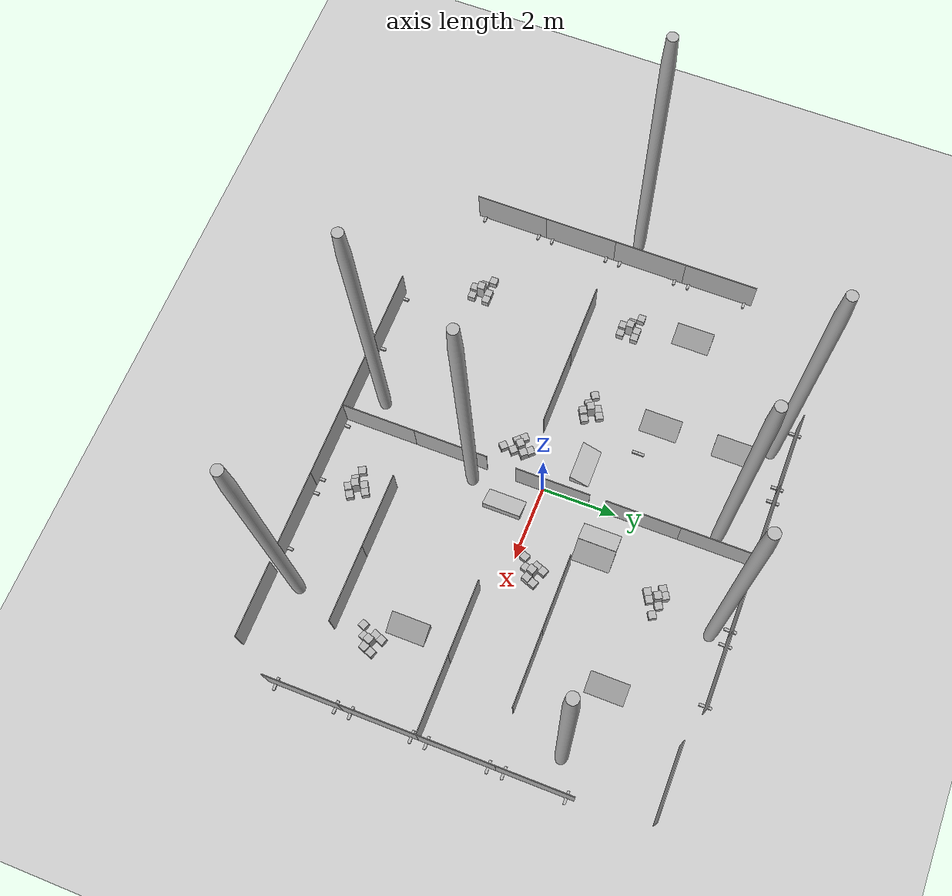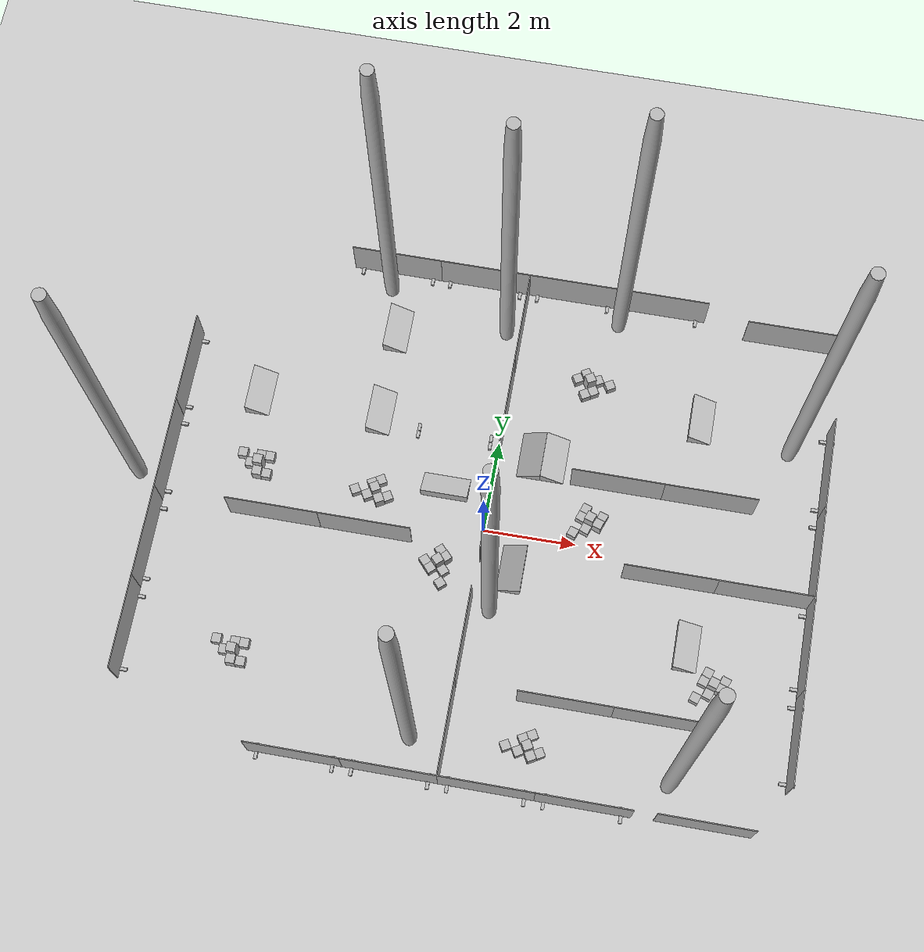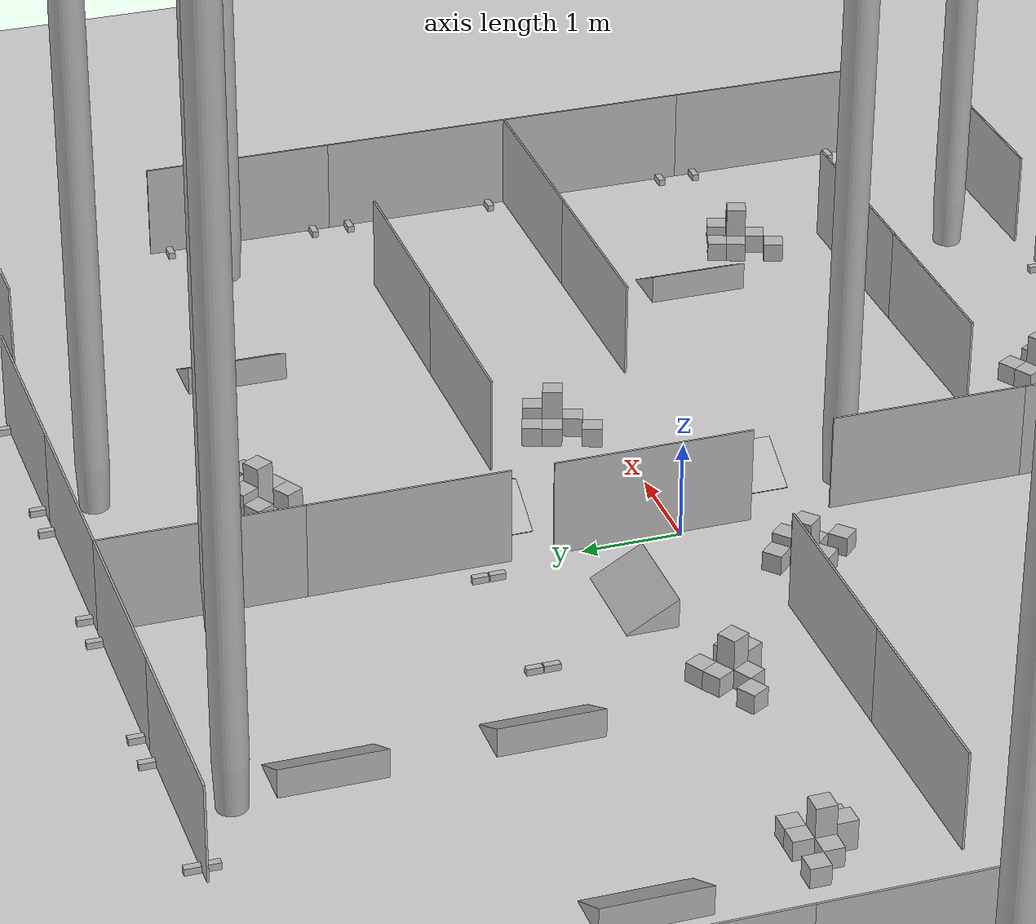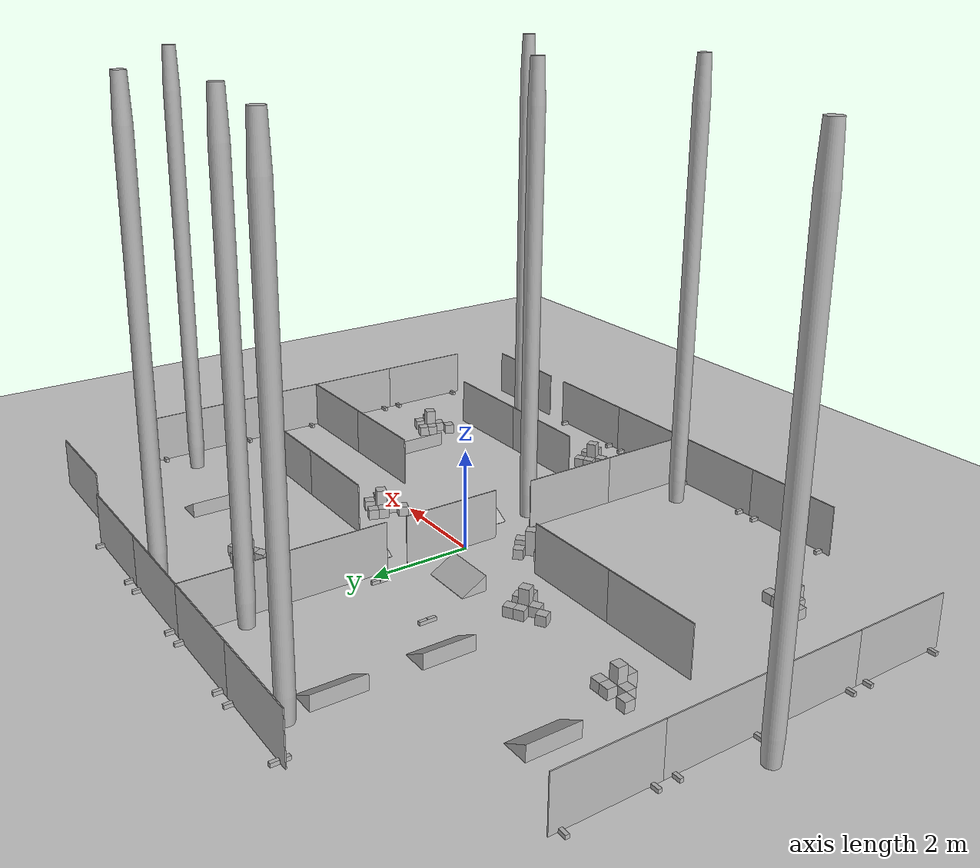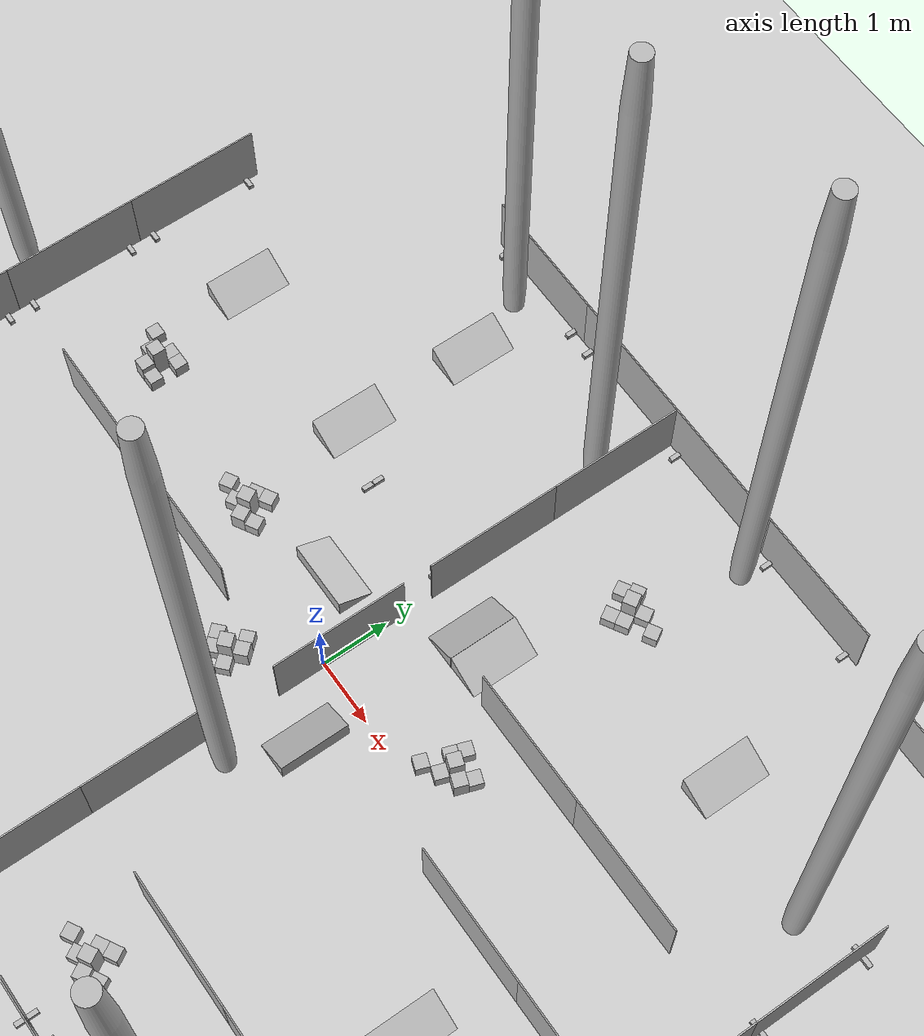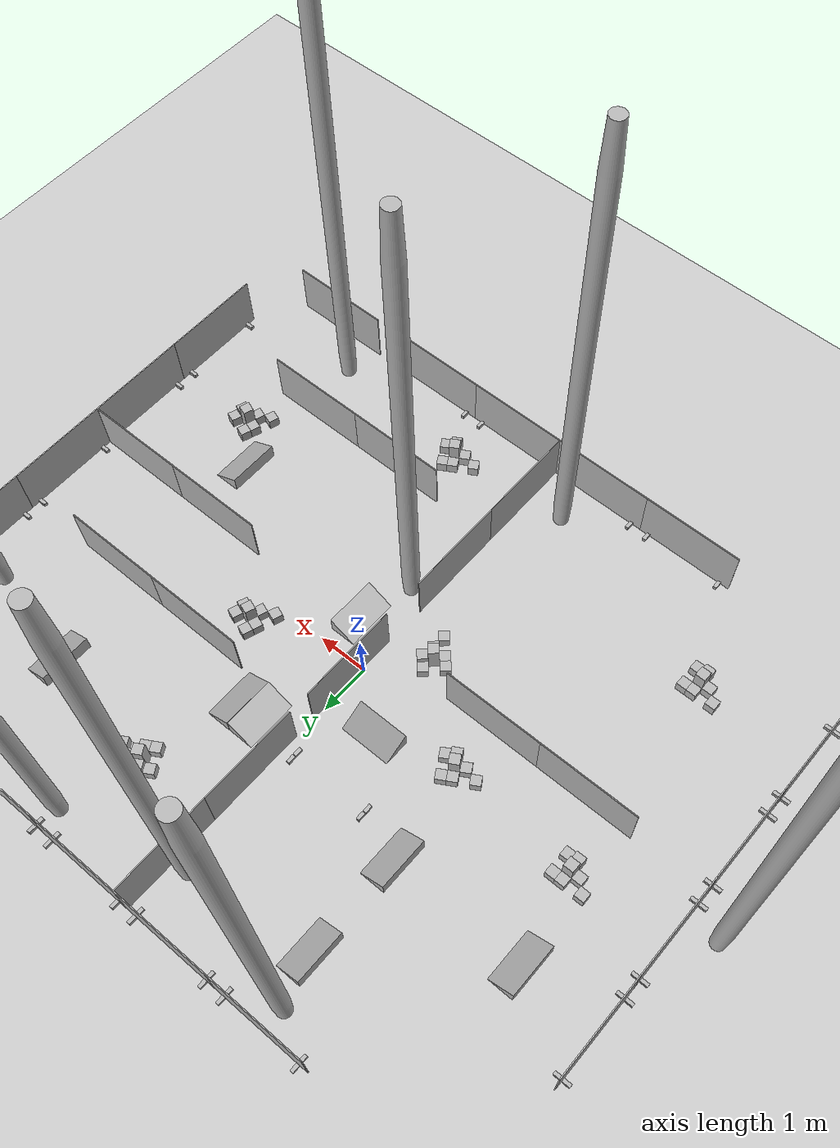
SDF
<sdf version="1.4">
 <world name="arena_HKT_8">
  <include><uri>model://ground_plane</uri></include>
  <include>
   <name>wall_2x1.384</name>
   <pose>-7.0 2.468942403793335 0.5130000114440918  0.0 -0.0 1.570796251296997</pose>
   <uri>model://wall_2x1</uri>
  </include>
  <include>
   <name>wall_2x1.385</name>
   <pose>-2.479029655456543 -0.531057596206665 0.5130000114440918  0.0 0.0 0.0</pose>
   <uri>model://wall_2x1</uri>
  </include>
  <include>
   <name>wall_stand.871</name>
   <pose>-1.8005000352859497 2.0 0.03449999913573265  0.0 -0.0 1.570796251296997</pose>
   <uri>model://wall_stand</uri>
  </include>
  <include>
   <name>wall_stand.872</name>
   <pose>-0.19949999451637268 2.0 0.03449999913573265  0.0 -0.0 1.570796251296997</pose>
   <uri>model://wall_stand</uri>
  </include>
  <include>
   <name>wall_2x1.386</name>
   <pose>-7.0 0.46894240379333496 0.5130000114440918  0.0 -0.0 1.570796251296997</pose>
   <uri>model://wall_2x1</uri>
  </include>
  <include>
   <name>wall_2x1.387</name>
   <pose>-7.0 -3.531057596206665 0.5130000114440918  0.0 -0.0 1.570796251296997</pose>
   <uri>model://wall_2x1</uri>
  </include>
  <include>
   <name>wall_2x1.388</name>
   <pose>-7.0 -1.531057596206665 0.5130000114440918  0.0 -0.0 1.570796251296997</pose>
   <uri>model://wall_2x1</uri>
  </include>
  <include>
   <name>wall_2x1.389</name>
   <pose>-4.479029655456543 -0.531057596206665 0.5130000114440918  0.0 0.0 0.0</pose>
   <uri>model://wall_2x1</uri>
  </include>
  <include>
   <name>wall_stand.873</name>
   <pose>-0.19949999451637268 2.0 0.03449999913573265  0.0 -0.0 1.570796251296997</pose>
   <uri>model://wall_stand</uri>
  </include>
  <include>
   <name>wall_stand.874</name>
   <pose>-7.0 3.269442558288574 0.03449999913573265  0.0 0.0 0.0</pose>
   <uri>model://wall_stand</uri>
  </include>
  <include>
   <name>wall_stand.875</name>
   <pose>-7.0 1.6684424877166748 0.03449999913573265  0.0 0.0 0.0</pose>
   <uri>model://wall_stand</uri>
  </include>
  <include>
   <name>wall_stand.876</name>
   <pose>-7.0 1.2694425582885742 0.03449999913573265  0.0 0.0 0.0</pose>
   <uri>model://wall_stand</uri>
  </include>
  <include>
   <name>wall_stand.877</name>
   <pose>-7.0 -0.3315575122833252 0.03449999913573265  0.0 0.0 0.0</pose>
   <uri>model://wall_stand</uri>
  </include>
  <include>
   <name>wall_stand.878</name>
   <pose>-7.0 -4.331557273864746 0.03449999913573265  0.0 0.0 0.0</pose>
   <uri>model://wall_stand</uri>
  </include>
  <include>
   <name>wall_stand.879</name>
   <pose>-7.0 -2.730557680130005 0.03449999913573265  0.0 0.0 0.0</pose>
   <uri>model://wall_stand</uri>
  </include>
  <include>
   <name>wall_stand.880</name>
   <pose>-7.0 -0.7305574417114258 0.03449999913573265  0.0 0.0 0.0</pose>
   <uri>model://wall_stand</uri>
  </include>
  <include>
   <name>wall_stand.881</name>
   <pose>-7.0 -2.331557512283325 0.03449999913573265  0.0 0.0 0.0</pose>
   <uri>model://wall_stand</uri>
  </include>
  <include>
   <name>cube_20x20.995</name>
   <pose>-5.073810577392578 0.8086726665496826 0.10000000149011612  0.0 -0.0 3.141592502593994</pose>
   <uri>model://cube_20x20</uri>
  </include>
  <include>
   <name>cube_20x20.996</name>
   <pose>-5.273810386657715 0.6086728572845459 0.10000000149011612  0.0 -0.0 3.141592502593994</pose>
   <uri>model://cube_20x20</uri>
  </include>
  <include>
   <name>cube_20x20.997</name>
   <pose>-5.473810195922852 0.8086726665496826 0.10000000149011612  0.0 -0.0 3.141592502593994</pose>
   <uri>model://cube_20x20</uri>
  </include>
  <include>
   <name>cube_20x20.998</name>
   <pose>-4.873810291290283 0.8086726665496826 0.10000000149011612  0.0 -0.0 3.141592502593994</pose>
   <uri>model://cube_20x20</uri>
  </include>
  <include>
   <name>cube_20x20.999</name>
   <pose>-4.873810291290283 0.4086730480194092 0.10000000149011612  0.0 -0.0 3.141592502593994</pose>
   <uri>model://cube_20x20</uri>
  </include>
  <include>
   <name>cube_20x30.168</name>
   <pose>-5.073810577392578 0.4086730480194092 0.15000000596046448  0.0 -0.0 3.141592502593994</pose>
   <uri>model://cube_20x30</uri>
  </include>
  <include>
   <name>cube_20x50.162</name>
   <pose>-5.073810577392578 0.6086728572845459 0.25  0.0 -0.0 3.141592502593994</pose>
   <uri>model://cube_20x50</uri>
  </include>
  <include>
   <name>cube_20x20.1000</name>
   <pose>-5.073810577392578 0.8086726665496826 0.10000000149011612  0.0 -0.0 3.141592502593994</pose>
   <uri>model://cube_20x20</uri>
  </include>
  <include>
   <name>cube_20x20.1001</name>
   <pose>-5.273810386657715 0.6086728572845459 0.10000000149011612  0.0 -0.0 3.141592502593994</pose>
   <uri>model://cube_20x20</uri>
  </include>
  <include>
   <name>cube_20x20.1002</name>
   <pose>-5.473810195922852 0.8086726665496826 0.10000000149011612  0.0 -0.0 3.141592502593994</pose>
   <uri>model://cube_20x20</uri>
  </include>
  <include>
   <name>cube_20x20.1003</name>
   <pose>-4.873810291290283 0.8086726665496826 0.10000000149011612  0.0 -0.0 3.141592502593994</pose>
   <uri>model://cube_20x20</uri>
  </include>
  <include>
   <name>cube_20x20.1004</name>
   <pose>-4.873810291290283 0.4086730480194092 0.10000000149011612  0.0 -0.0 3.141592502593994</pose>
   <uri>model://cube_20x20</uri>
  </include>
  <include>
   <name>cube_20x30.169</name>
   <pose>-5.073810577392578 0.4086730480194092 0.15000000596046448  0.0 -0.0 3.141592502593994</pose>
   <uri>model://cube_20x30</uri>
  </include>
  <include>
   <name>cube_20x50.163</name>
   <pose>-5.073810577392578 0.6086728572845459 0.25  0.0 -0.0 3.141592502593994</pose>
   <uri>model://cube_20x50</uri>
  </include>
  <include>
   <name>ramp.070</name>
   <pose>1.2565653324127197 1.8507144451141357 0.15000000596046448  0.0 0.0 0.0</pose>
   <uri>model://ramp</uri>
  </include>
  <include>
   <name>ramp.071</name>
   <pose>0.7436184883117676 1.8457143306732178 0.15000000596046448  0.0 -0.0 3.141592502593994</pose>
   <uri>model://ramp</uri>
  </include>
  <include>
   <name>ramp.072</name>
   <pose>-0.9832800030708313 0.8252742290496826 0.15000000596046448  0.0 -0.0 7.853981971740723</pose>
   <uri>model://ramp</uri>
  </include>
  <include>
   <name>wall_2x1.390</name>
   <pose>7.071430206298828 -3.531057596206665 0.5130000114440918  0.0 -0.0 4.71238899230957</pose>
   <uri>model://wall_2x1</uri>
  </include>
  <include>
   <name>wall_2x1.391</name>
   <pose>4.071430206298828 -0.5310573577880859 0.5130000114440918  0.0 -0.0 3.141592502593994</pose>
   <uri>model://wall_2x1</uri>
  </include>
  <include>
   <name>wall_stand.882</name>
   <pose>-1.8005000352859497 2.0 0.03449999913573265  0.0 -0.0 1.570796251296997</pose>
   <uri>model://wall_stand</uri>
  </include>
  <include>
   <name>wall_stand.883</name>
   <pose>-0.19949999451637268 2.0 0.03449999913573265  0.0 -0.0 1.570796251296997</pose>
   <uri>model://wall_stand</uri>
  </include>
  <include>
   <name>wall_2x1.392</name>
   <pose>7.071430206298828 -1.531057596206665 0.5130000114440918  0.0 -0.0 4.71238899230957</pose>
   <uri>model://wall_2x1</uri>
  </include>
  <include>
   <name>wall_2x1.393</name>
   <pose>7.071430206298828 2.468942403793335 0.5130000114440918  0.0 -0.0 4.71238899230957</pose>
   <uri>model://wall_2x1</uri>
  </include>
  <include>
   <name>wall_2x1.394</name>
   <pose>7.071430206298828 0.46894240379333496 0.5130000114440918  0.0 -0.0 4.71238899230957</pose>
   <uri>model://wall_2x1</uri>
  </include>
  <include>
   <name>wall_2x1.395</name>
   <pose>6.071430206298828 -0.5310574769973755 0.5130000114440918  0.0 -0.0 3.141592502593994</pose>
   <uri>model://wall_2x1</uri>
  </include>
  <include>
   <name>wall_stand.884</name>
   <pose>-0.19949999451637268 2.0 0.03449999913573265  0.0 -0.0 1.570796251296997</pose>
   <uri>model://wall_stand</uri>
  </include>
  <include>
   <name>wall_stand.885</name>
   <pose>7.071430206298828 -4.331557273864746 0.03450000286102295  0.0 -0.0 3.141592502593994</pose>
   <uri>model://wall_stand</uri>
  </include>
  <include>
   <name>wall_stand.886</name>
   <pose>7.071430206298828 -2.730557680130005 0.03450000286102295  0.0 -0.0 3.141592502593994</pose>
   <uri>model://wall_stand</uri>
  </include>
  <include>
   <name>wall_stand.887</name>
   <pose>7.071430206298828 -2.3315577507019043 0.03450000286102295  0.0 -0.0 3.141592502593994</pose>
   <uri>model://wall_stand</uri>
  </include>
  <include>
   <name>wall_stand.888</name>
   <pose>7.071430206298828 -0.7305576801300049 0.03450000286102295  0.0 -0.0 3.141592502593994</pose>
   <uri>model://wall_stand</uri>
  </include>
  <include>
   <name>wall_stand.889</name>
   <pose>7.071430206298828 3.269442319869995 0.03450000286102295  0.0 -0.0 3.141592502593994</pose>
   <uri>model://wall_stand</uri>
  </include>
  <include>
   <name>wall_stand.890</name>
   <pose>7.071430206298828 1.6684424877166748 0.03450000286102295  0.0 -0.0 3.141592502593994</pose>
   <uri>model://wall_stand</uri>
  </include>
  <include>
   <name>wall_stand.891</name>
   <pose>7.071430206298828 -0.3315577507019043 0.03450000286102295  0.0 -0.0 3.141592502593994</pose>
   <uri>model://wall_stand</uri>
  </include>
  <include>
   <name>wall_stand.892</name>
   <pose>7.071430206298828 1.2694423198699951 0.03450000286102295  0.0 -0.0 3.141592502593994</pose>
   <uri>model://wall_stand</uri>
  </include>
  <include>
   <name>wall_2x1.396</name>
   <pose>-2.989354133605957 -5.530285835266113 0.5130000114440918  0.0 -0.0 3.141592502593994</pose>
   <uri>model://wall_2x1</uri>
  </include>
  <include>
   <name>wall_2x1.397</name>
   <pose>0.010646045207977295 -2.5302858352661133 0.5130000114440918  0.0 -0.0 1.570796251296997</pose>
   <uri>model://wall_2x1</uri>
  </include>
  <include>
   <name>wall_stand.893</name>
   <pose>-1.8005000352859497 2.0 0.03449999913573265  0.0 -0.0 1.570796251296997</pose>
   <uri>model://wall_stand</uri>
  </include>
  <include>
   <name>wall_stand.894</name>
   <pose>-0.19949999451637268 2.0 0.03449999913573265  0.0 -0.0 1.570796251296997</pose>
   <uri>model://wall_stand</uri>
  </include>
  <include>
   <name>wall_2x1.398</name>
   <pose>-0.9893541932106018 -5.530285835266113 0.5130000114440918  0.0 -0.0 3.141592502593994</pose>
   <uri>model://wall_2x1</uri>
  </include>
  <include>
   <name>wall_2x1.399</name>
   <pose>3.010645627975464 -5.530285835266113 0.5130000114440918  0.0 -0.0 3.141592502593994</pose>
   <uri>model://wall_2x1</uri>
  </include>
  <include>
   <name>wall_2x1.400</name>
   <pose>1.010645866394043 -5.530285835266113 0.5130000114440918  0.0 -0.0 3.141592502593994</pose>
   <uri>model://wall_2x1</uri>
  </include>
  <include>
   <name>wall_2x1.401</name>
   <pose>0.010645806789398193 -4.530285835266113 0.5130000114440918  0.0 -0.0 1.570796251296997</pose>
   <uri>model://wall_2x1</uri>
  </include>
  <include>
   <name>wall_stand.895</name>
   <pose>-0.19949999451637268 2.0 0.03449999913573265  0.0 -0.0 1.570796251296997</pose>
   <uri>model://wall_stand</uri>
  </include>
  <include>
   <name>wall_stand.896</name>
   <pose>-3.7898542881011963 -5.530285835266113 0.03450000286102295  0.0 -0.0 1.570796251296997</pose>
   <uri>model://wall_stand</uri>
  </include>
  <include>
   <name>wall_stand.897</name>
   <pose>-2.188854217529297 -5.530285835266113 0.03450000286102295  0.0 -0.0 1.570796251296997</pose>
   <uri>model://wall_stand</uri>
  </include>
  <include>
   <name>wall_stand.898</name>
   <pose>-1.7898542881011963 -5.530285835266113 0.03450000286102295  0.0 -0.0 1.570796251296997</pose>
   <uri>model://wall_stand</uri>
  </include>
  <include>
   <name>wall_stand.899</name>
   <pose>-0.18885427713394165 -5.530285835266113 0.03450000286102295  0.0 -0.0 1.570796251296997</pose>
   <uri>model://wall_stand</uri>
  </include>
  <include>
   <name>wall_stand.900</name>
   <pose>3.811145544052124 -5.530285835266113 0.03450000286102295  0.0 -0.0 1.570796251296997</pose>
   <uri>model://wall_stand</uri>
  </include>
  <include>
   <name>wall_stand.901</name>
   <pose>2.210145950317383 -5.530285835266113 0.03450000286102295  0.0 -0.0 1.570796251296997</pose>
   <uri>model://wall_stand</uri>
  </include>
  <include>
   <name>wall_stand.902</name>
   <pose>0.21014565229415894 -5.530285835266113 0.03450000286102295  0.0 -0.0 1.570796251296997</pose>
   <uri>model://wall_stand</uri>
  </include>
  <include>
   <name>wall_stand.903</name>
   <pose>1.8111457824707031 -5.530285835266113 0.03450000286102295  0.0 -0.0 1.570796251296997</pose>
   <uri>model://wall_stand</uri>
  </include>
  <include>
   <name>cube_20x20.1005</name>
   <pose>-4.71690034866333 -3.3630831241607666 0.10000000149011612  0.0 -0.0 3.141592502593994</pose>
   <uri>model://cube_20x20</uri>
  </include>
  <include>
   <name>cube_20x20.1006</name>
   <pose>-4.916900157928467 -3.5630829334259033 0.10000000149011612  0.0 -0.0 3.141592502593994</pose>
   <uri>model://cube_20x20</uri>
  </include>
  <include>
   <name>cube_20x20.1007</name>
   <pose>-5.1168999671936035 -3.3630831241607666 0.10000000149011612  0.0 -0.0 3.141592502593994</pose>
   <uri>model://cube_20x20</uri>
  </include>
  <include>
   <name>cube_20x20.1008</name>
   <pose>-4.516900062561035 -3.3630831241607666 0.10000000149011612  0.0 -0.0 3.141592502593994</pose>
   <uri>model://cube_20x20</uri>
  </include>
  <include>
   <name>cube_20x20.1009</name>
   <pose>-4.516900062561035 -3.76308274269104 0.10000000149011612  0.0 -0.0 3.141592502593994</pose>
   <uri>model://cube_20x20</uri>
  </include>
  <include>
   <name>cube_20x20.1010</name>
   <pose>-4.71690034866333 -3.3630831241607666 0.10000000149011612  0.0 -0.0 3.141592502593994</pose>
   <uri>model://cube_20x20</uri>
  </include>
  <include>
   <name>cube_20x20.1011</name>
   <pose>-4.916900157928467 -3.5630829334259033 0.10000000149011612  0.0 -0.0 3.141592502593994</pose>
   <uri>model://cube_20x20</uri>
  </include>
  <include>
   <name>cube_20x20.1012</name>
   <pose>-5.1168999671936035 -3.3630831241607666 0.10000000149011612  0.0 -0.0 3.141592502593994</pose>
   <uri>model://cube_20x20</uri>
  </include>
  <include>
   <name>cube_20x20.1013</name>
   <pose>-4.516900062561035 -3.3630831241607666 0.10000000149011612  0.0 -0.0 3.141592502593994</pose>
   <uri>model://cube_20x20</uri>
  </include>
  <include>
   <name>cube_20x20.1014</name>
   <pose>-4.516900062561035 -3.76308274269104 0.10000000149011612  0.0 -0.0 3.141592502593994</pose>
   <uri>model://cube_20x20</uri>
  </include>
  <include>
   <name>cube_20x30.170</name>
   <pose>-4.71690034866333 -3.76308274269104 0.15000000596046448  0.0 -0.0 3.141592502593994</pose>
   <uri>model://cube_20x30</uri>
  </include>
  <include>
   <name>cube_20x30.171</name>
   <pose>-4.71690034866333 -3.76308274269104 0.15000000596046448  0.0 -0.0 3.141592502593994</pose>
   <uri>model://cube_20x30</uri>
  </include>
  <include>
   <name>cube_20x50.164</name>
   <pose>-4.71690034866333 -3.5630829334259033 0.25  0.0 -0.0 3.141592502593994</pose>
   <uri>model://cube_20x50</uri>
  </include>
  <include>
   <name>cube_20x50.165</name>
   <pose>-4.71690034866333 -3.5630829334259033 0.25  0.0 -0.0 3.141592502593994</pose>
   <uri>model://cube_20x50</uri>
  </include>
  <include>
   <name>cube_20x20.1015</name>
   <pose>1.5919134616851807 -4.343883514404297 0.10000000149011612  0.0 -0.0 3.6651763916015625</pose>
   <uri>model://cube_20x20</uri>
  </include>
  <include>
   <name>cube_20x20.1016</name>
   <pose>1.5187044143676758 -4.617087364196777 0.10000000149011612  0.0 -0.0 3.6651763916015625</pose>
   <uri>model://cube_20x20</uri>
  </include>
  <include>
   <name>cube_20x20.1017</name>
   <pose>1.2455005645751953 -4.543877601623535 0.10000000149011612  0.0 -0.0 3.6651763916015625</pose>
   <uri>model://cube_20x20</uri>
  </include>
  <include>
   <name>cube_20x20.1018</name>
   <pose>1.7651203870773315 -4.2438859939575195 0.10000000149011612  0.0 -0.0 3.6651763916015625</pose>
   <uri>model://cube_20x20</uri>
  </include>
  <include>
   <name>cube_20x20.1019</name>
   <pose>1.9651148319244385 -4.590298652648926 0.10000000149011612  0.0 -0.0 3.6651763916015625</pose>
   <uri>model://cube_20x20</uri>
  </include>
  <include>
   <name>cube_20x20.1020</name>
   <pose>1.5919134616851807 -4.343883514404297 0.10000000149011612  0.0 -0.0 3.6651763916015625</pose>
   <uri>model://cube_20x20</uri>
  </include>
  <include>
   <name>cube_20x20.1021</name>
   <pose>1.5187044143676758 -4.617087364196777 0.10000000149011612  0.0 -0.0 3.6651763916015625</pose>
   <uri>model://cube_20x20</uri>
  </include>
  <include>
   <name>cube_20x20.1022</name>
   <pose>1.2455005645751953 -4.543877601623535 0.10000000149011612  0.0 -0.0 3.6651763916015625</pose>
   <uri>model://cube_20x20</uri>
  </include>
  <include>
   <name>cube_20x20.1023</name>
   <pose>1.7651203870773315 -4.2438859939575195 0.10000000149011612  0.0 -0.0 3.6651763916015625</pose>
   <uri>model://cube_20x20</uri>
  </include>
  <include>
   <name>cube_20x20.1024</name>
   <pose>1.9651148319244385 -4.590298652648926 0.10000000149011612  0.0 -0.0 3.6651763916015625</pose>
   <uri>model://cube_20x20</uri>
  </include>
  <include>
   <name>cube_20x30.172</name>
   <pose>1.7919080257415771 -4.690296173095703 0.15000000596046448  0.0 -0.0 3.6651763916015625</pose>
   <uri>model://cube_20x30</uri>
  </include>
  <include>
   <name>cube_20x30.173</name>
   <pose>1.7919080257415771 -4.690296173095703 0.15000000596046448  0.0 -0.0 3.6651763916015625</pose>
   <uri>model://cube_20x30</uri>
  </include>
  <include>
   <name>cube_20x50.166</name>
   <pose>1.691910743713379 -4.51708984375 0.25  0.0 -0.0 3.6651763916015625</pose>
   <uri>model://cube_20x50</uri>
  </include>
  <include>
   <name>cube_20x50.167</name>
   <pose>1.691910743713379 -4.51708984375 0.25  0.0 -0.0 3.6651763916015625</pose>
   <uri>model://cube_20x50</uri>
  </include>
  <include>
   <name>cube_20x20.1025</name>
   <pose>2.0343916416168213 0.613365888595581 0.10000000149011612  0.0 0.0 4.376082897186279</pose>
   <uri>model://cube_20x20</uri>
  </include>
  <include>
   <name>cube_20x20.1026</name>
   <pose>2.1571874618530273 0.358569860458374 0.10000000149011612  0.0 0.0 4.376082897186279</pose>
   <uri>model://cube_20x20</uri>
  </include>
  <include>
   <name>cube_20x20.1027</name>
   <pose>1.902390956878662 0.23577475547790527 0.10000000149011612  0.0 0.0 4.376082897186279</pose>
   <uri>model://cube_20x20</uri>
  </include>
  <include>
   <name>cube_20x20.1028</name>
   <pose>2.1003925800323486 0.8021619319915771 0.10000000149011612  0.0 0.0 4.376082897186279</pose>
   <uri>model://cube_20x20</uri>
  </include>
  <include>
   <name>cube_20x20.1029</name>
   <pose>2.4779841899871826 0.6701610088348389 0.10000000149011612  0.0 0.0 4.376082897186279</pose>
   <uri>model://cube_20x20</uri>
  </include>
  <include>
   <name>cube_20x20.1030</name>
   <pose>2.0343916416168213 0.613365888595581 0.10000000149011612  0.0 0.0 4.376082897186279</pose>
   <uri>model://cube_20x20</uri>
  </include>
  <include>
   <name>cube_20x20.1031</name>
   <pose>2.1571874618530273 0.358569860458374 0.10000000149011612  0.0 0.0 4.376082897186279</pose>
   <uri>model://cube_20x20</uri>
  </include>
  <include>
   <name>cube_20x20.1032</name>
   <pose>1.902390956878662 0.23577475547790527 0.10000000149011612  0.0 0.0 4.376082897186279</pose>
   <uri>model://cube_20x20</uri>
  </include>
  <include>
   <name>cube_20x20.1033</name>
   <pose>2.1003925800323486 0.8021619319915771 0.10000000149011612  0.0 0.0 4.376082897186279</pose>
   <uri>model://cube_20x20</uri>
  </include>
  <include>
   <name>cube_20x20.1034</name>
   <pose>2.4779841899871826 0.6701610088348389 0.10000000149011612  0.0 0.0 4.376082897186279</pose>
   <uri>model://cube_20x20</uri>
  </include>
  <include>
   <name>cube_20x30.174</name>
   <pose>2.4119834899902344 0.4813649654388428 0.15000000596046448  0.0 0.0 4.376082897186279</pose>
   <uri>model://cube_20x30</uri>
  </include>
  <include>
   <name>cube_20x30.175</name>
   <pose>2.4119834899902344 0.4813649654388428 0.15000000596046448  0.0 0.0 4.376082897186279</pose>
   <uri>model://cube_20x30</uri>
  </include>
  <include>
   <name>cube_20x50.168</name>
   <pose>2.2231879234313965 0.5473649501800537 0.25  0.0 0.0 4.376082897186279</pose>
   <uri>model://cube_20x50</uri>
  </include>
  <include>
   <name>cube_20x50.169</name>
   <pose>2.2231879234313965 0.5473649501800537 0.25  0.0 0.0 4.376082897186279</pose>
   <uri>model://cube_20x50</uri>
  </include>
  <include>
   <name>ramp.073</name>
   <pose>4.665114402770996 -1.8227006196975708 0.15000000596046448  0.0 0.0 0.0</pose>
   <uri>model://ramp</uri>
  </include>
  <include>
   <name>ramp.074</name>
   <pose>0.7436184883117676 -0.7737877368927002 0.15000000596046448  0.0 -0.0 3.141592502593994</pose>
   <uri>model://ramp</uri>
  </include>
  <include>
   <name>cube_20x20.1035</name>
   <pose>-0.978894829750061 -1.071094274520874 0.10000000149011612  0.0 0.0 5.4528021812438965</pose>
   <uri>model://cube_20x20</uri>
  </include>
  <include>
   <name>cube_20x20.1036</name>
   <pose>-0.6963385343551636 -1.0838134288787842 0.10000000149011612  0.0 0.0 5.4528021812438965</pose>
   <uri>model://cube_20x20</uri>
  </include>
  <include>
   <name>cube_20x20.1037</name>
   <pose>-0.709058403968811 -1.3663697242736816 0.10000000149011612  0.0 0.0 5.4528021812438965</pose>
   <uri>model://cube_20x20</uri>
  </include>
  <include>
   <name>cube_20x20.1038</name>
   <pose>-1.1138131618499756 -0.9234559535980225 0.10000000149011612  0.0 0.0 5.4528021812438965</pose>
   <uri>model://cube_20x20</uri>
  </include>
  <include>
   <name>cube_20x20.1039</name>
   <pose>-0.8185372948646545 -0.6536192893981934 0.10000000149011612  0.0 0.0 5.4528021812438965</pose>
   <uri>model://cube_20x20</uri>
  </include>
  <include>
   <name>cube_20x20.1040</name>
   <pose>-0.978894829750061 -1.071094274520874 0.10000000149011612  0.0 0.0 5.4528021812438965</pose>
   <uri>model://cube_20x20</uri>
  </include>
  <include>
   <name>cube_20x20.1041</name>
   <pose>-0.6963385343551636 -1.0838134288787842 0.10000000149011612  0.0 0.0 5.4528021812438965</pose>
   <uri>model://cube_20x20</uri>
  </include>
  <include>
   <name>cube_20x20.1042</name>
   <pose>-0.709058403968811 -1.3663697242736816 0.10000000149011612  0.0 0.0 5.4528021812438965</pose>
   <uri>model://cube_20x20</uri>
  </include>
  <include>
   <name>cube_20x20.1043</name>
   <pose>-1.1138131618499756 -0.9234559535980225 0.10000000149011612  0.0 0.0 5.4528021812438965</pose>
   <uri>model://cube_20x20</uri>
  </include>
  <include>
   <name>cube_20x20.1044</name>
   <pose>-0.8185372948646545 -0.6536192893981934 0.10000000149011612  0.0 0.0 5.4528021812438965</pose>
   <uri>model://cube_20x20</uri>
  </include>
  <include>
   <name>cube_20x30.176</name>
   <pose>-0.6836188435554504 -0.8012573719024658 0.15000000596046448  0.0 0.0 5.4528021812438965</pose>
   <uri>model://cube_20x30</uri>
  </include>
  <include>
   <name>cube_20x30.177</name>
   <pose>-0.6836188435554504 -0.8012573719024658 0.15000000596046448  0.0 0.0 5.4528021812438965</pose>
   <uri>model://cube_20x30</uri>
  </include>
  <include>
   <name>cube_20x50.170</name>
   <pose>-0.8312562108039856 -0.9361758232116699 0.25  0.0 0.0 5.4528021812438965</pose>
   <uri>model://cube_20x50</uri>
  </include>
  <include>
   <name>cube_20x50.171</name>
   <pose>-0.8312562108039856 -0.9361758232116699 0.25  0.0 0.0 5.4528021812438965</pose>
   <uri>model://cube_20x50</uri>
  </include>
  <include>
   <name>cube_20x20.1045</name>
   <pose>1.8325855731964111 3.536480188369751 0.10000000149011612  0.0 0.0 6.806769371032715</pose>
   <uri>model://cube_20x20</uri>
  </include>
  <include>
   <name>cube_20x20.1046</name>
   <pose>1.905794620513916 3.8096840381622314 0.10000000149011612  0.0 0.0 6.806769371032715</pose>
   <uri>model://cube_20x20</uri>
  </include>
  <include>
   <name>cube_20x20.1047</name>
   <pose>2.1789984703063965 3.7364747524261475 0.10000000149011612  0.0 0.0 6.806769371032715</pose>
   <uri>model://cube_20x20</uri>
  </include>
  <include>
   <name>cube_20x20.1048</name>
   <pose>1.6593786478042603 3.4364826679229736 0.10000000149011612  0.0 0.0 6.806769371032715</pose>
   <uri>model://cube_20x20</uri>
  </include>
  <include>
   <name>cube_20x20.1049</name>
   <pose>1.4593842029571533 3.782895803451538 0.10000000149011612  0.0 0.0 6.806769371032715</pose>
   <uri>model://cube_20x20</uri>
  </include>
  <include>
   <name>cube_20x20.1050</name>
   <pose>1.8325855731964111 3.536480188369751 0.10000000149011612  0.0 0.0 6.806769371032715</pose>
   <uri>model://cube_20x20</uri>
  </include>
  <include>
   <name>cube_20x20.1051</name>
   <pose>1.905794620513916 3.8096840381622314 0.10000000149011612  0.0 0.0 6.806769371032715</pose>
   <uri>model://cube_20x20</uri>
  </include>
  <include>
   <name>cube_20x20.1052</name>
   <pose>2.1789984703063965 3.7364747524261475 0.10000000149011612  0.0 0.0 6.806769371032715</pose>
   <uri>model://cube_20x20</uri>
  </include>
  <include>
   <name>cube_20x20.1053</name>
   <pose>1.6593786478042603 3.4364826679229736 0.10000000149011612  0.0 0.0 6.806769371032715</pose>
   <uri>model://cube_20x20</uri>
  </include>
  <include>
   <name>cube_20x20.1054</name>
   <pose>1.4593842029571533 3.782895803451538 0.10000000149011612  0.0 0.0 6.806769371032715</pose>
   <uri>model://cube_20x20</uri>
  </include>
  <include>
   <name>cube_20x30.178</name>
   <pose>1.6325910091400146 3.8828933238983154 0.15000000596046448  0.0 0.0 6.806769371032715</pose>
   <uri>model://cube_20x30</uri>
  </include>
  <include>
   <name>cube_20x30.179</name>
   <pose>1.6325910091400146 3.8828933238983154 0.15000000596046448  0.0 0.0 6.806769371032715</pose>
   <uri>model://cube_20x30</uri>
  </include>
  <include>
   <name>cube_20x50.172</name>
   <pose>1.732588291168213 3.7096869945526123 0.25  0.0 0.0 6.806769371032715</pose>
   <uri>model://cube_20x50</uri>
  </include>
  <include>
   <name>cube_20x50.173</name>
   <pose>1.732588291168213 3.7096869945526123 0.25  0.0 0.0 6.806769371032715</pose>
   <uri>model://cube_20x50</uri>
  </include>
  <include>
   <name>wall_2x1.402</name>
   <pose>3.0413644313812256 5.695001602172852 0.5130000114440918  0.0 -0.0 6.283185005187988</pose>
   <uri>model://wall_2x1</uri>
  </include>
  <include>
   <name>wall_2x1.403</name>
   <pose>0.04136395454406738 2.695002794265747 0.5130000114440918  0.0 -0.0 4.71238899230957</pose>
   <uri>model://wall_2x1</uri>
  </include>
  <include>
   <name>wall_stand.904</name>
   <pose>-1.8005000352859497 2.0 0.03449999913573265  0.0 -0.0 1.570796251296997</pose>
   <uri>model://wall_stand</uri>
  </include>
  <include>
   <name>wall_stand.905</name>
   <pose>-0.19949999451637268 2.0 0.03449999913573265  0.0 -0.0 1.570796251296997</pose>
   <uri>model://wall_stand</uri>
  </include>
  <include>
   <name>wall_2x1.404</name>
   <pose>1.0413646697998047 5.695002555847168 0.5130000114440918  0.0 -0.0 6.283185005187988</pose>
   <uri>model://wall_2x1</uri>
  </include>
  <include>
   <name>wall_2x1.405</name>
   <pose>-2.9586355686187744 5.695002555847168 0.5130000114440918  0.0 -0.0 6.283185005187988</pose>
   <uri>model://wall_2x1</uri>
  </include>
  <include>
   <name>wall_2x1.406</name>
   <pose>-0.9586355686187744 5.695002555847168 0.5130000114440918  0.0 -0.0 6.283185005187988</pose>
   <uri>model://wall_2x1</uri>
  </include>
  <include>
   <name>wall_2x1.407</name>
   <pose>0.041364431381225586 4.695002555847168 0.5130000114440918  0.0 -0.0 4.71238899230957</pose>
   <uri>model://wall_2x1</uri>
  </include>
  <include>
   <name>wall_stand.906</name>
   <pose>-0.19949999451637268 2.0 0.03449999913573265  0.0 -0.0 1.570796251296997</pose>
   <uri>model://wall_stand</uri>
  </include>
  <include>
   <name>wall_stand.907</name>
   <pose>3.841865062713623 5.695001602172852 0.03450000286102295  0.0 -0.0 4.71238899230957</pose>
   <uri>model://wall_stand</uri>
  </include>
  <include>
   <name>wall_stand.908</name>
   <pose>2.2408647537231445 5.695002555847168 0.03450000286102295  0.0 -0.0 4.71238899230957</pose>
   <uri>model://wall_stand</uri>
  </include>
  <include>
   <name>wall_stand.909</name>
   <pose>1.8418647050857544 5.695002555847168 0.03450000286102295  0.0 -0.0 4.71238899230957</pose>
   <uri>model://wall_stand</uri>
  </include>
  <include>
   <name>wall_stand.910</name>
   <pose>0.24086451530456543 5.695002555847168 0.03450000286102295  0.0 -0.0 4.71238899230957</pose>
   <uri>model://wall_stand</uri>
  </include>
  <include>
   <name>wall_stand.911</name>
   <pose>-3.7591354846954346 5.695002555847168 0.03450000286102295  0.0 -0.0 4.71238899230957</pose>
   <uri>model://wall_stand</uri>
  </include>
  <include>
   <name>wall_stand.912</name>
   <pose>-2.1581356525421143 5.695002555847168 0.03450000286102295  0.0 -0.0 4.71238899230957</pose>
   <uri>model://wall_stand</uri>
  </include>
  <include>
   <name>wall_stand.913</name>
   <pose>-0.15813517570495605 5.695002555847168 0.03450000286102295  0.0 -0.0 4.71238899230957</pose>
   <uri>model://wall_stand</uri>
  </include>
  <include>
   <name>wall_stand.914</name>
   <pose>-1.7591354846954346 5.695002555847168 0.03450000286102295  0.0 -0.0 4.71238899230957</pose>
   <uri>model://wall_stand</uri>
  </include>
  <include>
   <name>wall_2x1.408</name>
   <pose>0.04136395454406738 0.2739219665527344 0.5130000114440918  0.0 -0.0 4.71238899230957</pose>
   <uri>model://wall_2x1</uri>
  </include>
  <include>
   <name>wall_stand.915</name>
   <pose>-1.8005000352859497 2.0 0.03449999913573265  0.0 -0.0 1.570796251296997</pose>
   <uri>model://wall_stand</uri>
  </include>
  <include>
   <name>wall_stand.916</name>
   <pose>-0.19949999451637268 2.0 0.03449999913573265  0.0 -0.0 1.570796251296997</pose>
   <uri>model://wall_stand</uri>
  </include>
  <include>
   <name>wall_2x1.409</name>
   <pose>5.476836204528809 -5.509757041931152 0.5130000114440918  0.0 -0.0 6.2831854820251465</pose>
   <uri>model://wall_2x1</uri>
  </include>
  <include>
   <name>wall_stand.917</name>
   <pose>-1.8005000352859497 2.0 0.03449999913573265  0.0 -0.0 1.570796251296997</pose>
   <uri>model://wall_stand</uri>
  </include>
  <include>
   <name>wall_stand.918</name>
   <pose>-0.19949999451637268 2.0 0.03449999913573265  0.0 -0.0 1.570796251296997</pose>
   <uri>model://wall_stand</uri>
  </include>
  <include>
   <name>wall_2x1.410</name>
   <pose>4.3128767013549805 -3.5467369556427 0.5130000114440918  0.0 -0.0 6.2831854820251465</pose>
   <uri>model://wall_2x1</uri>
  </include>
  <include>
   <name>wall_stand.919</name>
   <pose>-1.8005000352859497 2.0 0.03449999913573265  0.0 -0.0 1.570796251296997</pose>
   <uri>model://wall_stand</uri>
  </include>
  <include>
   <name>wall_stand.920</name>
   <pose>-0.19949999451637268 2.0 0.03449999913573265  0.0 -0.0 1.570796251296997</pose>
   <uri>model://wall_stand</uri>
  </include>
  <include>
   <name>wall_2x1.411</name>
   <pose>2.3128767013549805 -3.5467369556427 0.5130000114440918  0.0 -0.0 6.2831854820251465</pose>
   <uri>model://wall_2x1</uri>
  </include>
  <include>
   <name>wall_stand.921</name>
   <pose>-1.8005000352859497 2.0 0.03449999913573265  0.0 -0.0 1.570796251296997</pose>
   <uri>model://wall_stand</uri>
  </include>
  <include>
   <name>wall_stand.922</name>
   <pose>-0.19949999451637268 2.0 0.03449999913573265  0.0 -0.0 1.570796251296997</pose>
   <uri>model://wall_stand</uri>
  </include>
  <include>
   <name>ramp.075</name>
   <pose>-5.403332710266113 2.3036534786224365 0.15000000596046448  0.0 -0.0 6.283185005187988</pose>
   <uri>model://ramp</uri>
  </include>
  <include>
   <name>wall_2x1.412</name>
   <pose>5.946268081665039 5.418047904968262 0.5130000114440918  0.0 -0.0 9.42477798461914</pose>
   <uri>model://wall_2x1</uri>
  </include>
  <include>
   <name>wall_stand.923</name>
   <pose>-1.8005000352859497 2.0 0.03449999913573265  0.0 -0.0 1.570796251296997</pose>
   <uri>model://wall_stand</uri>
  </include>
  <include>
   <name>wall_stand.924</name>
   <pose>-0.19949999451637268 2.0 0.03449999913573265  0.0 -0.0 1.570796251296997</pose>
   <uri>model://wall_stand</uri>
  </include>
  <include>
   <name>wall_2x1.413</name>
   <pose>2.6684865951538086 1.3634209632873535 0.5130000114440918  0.0 -0.0 9.42477798461914</pose>
   <uri>model://wall_2x1</uri>
  </include>
  <include>
   <name>wall_stand.925</name>
   <pose>-1.8005000352859497 2.0 0.03449999913573265  0.0 -0.0 1.570796251296997</pose>
   <uri>model://wall_stand</uri>
  </include>
  <include>
   <name>wall_stand.926</name>
   <pose>-0.19949999451637268 2.0 0.03449999913573265  0.0 -0.0 1.570796251296997</pose>
   <uri>model://wall_stand</uri>
  </include>
  <include>
   <name>wall_2x1.414</name>
   <pose>4.668486595153809 1.3634209632873535 0.5130000114440918  0.0 -0.0 9.42477798461914</pose>
   <uri>model://wall_2x1</uri>
  </include>
  <include>
   <name>wall_stand.927</name>
   <pose>-1.8005000352859497 2.0 0.03449999913573265  0.0 -0.0 1.570796251296997</pose>
   <uri>model://wall_stand</uri>
  </include>
  <include>
   <name>wall_stand.928</name>
   <pose>-0.19949999451637268 2.0 0.03449999913573265  0.0 -0.0 1.570796251296997</pose>
   <uri>model://wall_stand</uri>
  </include>
  <include>
   <name>ramp.076</name>
   <pose>-2.6988332271575928 2.3036534786224365 0.15000000596046448  0.0 -0.0 6.283185005187988</pose>
   <uri>model://ramp</uri>
  </include>
  <include>
   <name>ramp.077</name>
   <pose>-2.6988332271575928 4.303653717041016 0.15000000596046448  0.0 -0.0 6.283185005187988</pose>
   <uri>model://ramp</uri>
  </include>
  <include>
   <name>cube_20x20.1055</name>
   <pose>-2.552931070327759 0.590984582901001 0.10000000149011612  0.0 -0.0 3.6651763916015625</pose>
   <uri>model://cube_20x20</uri>
  </include>
  <include>
   <name>cube_20x20.1056</name>
   <pose>-2.6261401176452637 0.3177807331085205 0.10000000149011612  0.0 -0.0 3.6651763916015625</pose>
   <uri>model://cube_20x20</uri>
  </include>
  <include>
   <name>cube_20x20.1057</name>
   <pose>-2.8993442058563232 0.3909900188446045 0.10000000149011612  0.0 -0.0 3.6651763916015625</pose>
   <uri>model://cube_20x20</uri>
  </include>
  <include>
   <name>cube_20x20.1058</name>
   <pose>-2.3797242641448975 0.6909821033477783 0.10000000149011612  0.0 -0.0 3.6651763916015625</pose>
   <uri>model://cube_20x20</uri>
  </include>
  <include>
   <name>cube_20x20.1059</name>
   <pose>-2.179729700088501 0.34456896781921387 0.10000000149011612  0.0 -0.0 3.6651763916015625</pose>
   <uri>model://cube_20x20</uri>
  </include>
  <include>
   <name>cube_20x20.1060</name>
   <pose>-2.552931070327759 0.590984582901001 0.10000000149011612  0.0 -0.0 3.6651763916015625</pose>
   <uri>model://cube_20x20</uri>
  </include>
  <include>
   <name>cube_20x20.1061</name>
   <pose>-2.6261401176452637 0.3177807331085205 0.10000000149011612  0.0 -0.0 3.6651763916015625</pose>
   <uri>model://cube_20x20</uri>
  </include>
  <include>
   <name>cube_20x20.1062</name>
   <pose>-2.8993442058563232 0.3909900188446045 0.10000000149011612  0.0 -0.0 3.6651763916015625</pose>
   <uri>model://cube_20x20</uri>
  </include>
  <include>
   <name>cube_20x20.1063</name>
   <pose>-2.3797242641448975 0.6909821033477783 0.10000000149011612  0.0 -0.0 3.6651763916015625</pose>
   <uri>model://cube_20x20</uri>
  </include>
  <include>
   <name>cube_20x20.1064</name>
   <pose>-2.179729700088501 0.34456896781921387 0.10000000149011612  0.0 -0.0 3.6651763916015625</pose>
   <uri>model://cube_20x20</uri>
  </include>
  <include>
   <name>cube_20x20.1065</name>
   <pose>5.100072860717773 -2.5086545944213867 0.10000000149011612  0.0 0.0 4.376082897186279</pose>
   <uri>model://cube_20x20</uri>
  </include>
  <include>
   <name>cube_20x20.1066</name>
   <pose>5.222868919372559 -2.7634506225585938 0.10000000149011612  0.0 0.0 4.376082897186279</pose>
   <uri>model://cube_20x20</uri>
  </include>
  <include>
   <name>cube_20x20.1067</name>
   <pose>4.968071937561035 -2.8862462043762207 0.10000000149011612  0.0 0.0 4.376082897186279</pose>
   <uri>model://cube_20x20</uri>
  </include>
  <include>
   <name>cube_20x20.1068</name>
   <pose>5.166073799133301 -2.3198585510253906 0.10000000149011612  0.0 0.0 4.376082897186279</pose>
   <uri>model://cube_20x20</uri>
  </include>
  <include>
   <name>cube_20x20.1069</name>
   <pose>5.543665409088135 -2.451859474182129 0.10000000149011612  0.0 0.0 4.376082897186279</pose>
   <uri>model://cube_20x20</uri>
  </include>
  <include>
   <name>cube_20x20.1070</name>
   <pose>5.100072860717773 -2.5086545944213867 0.10000000149011612  0.0 0.0 4.376082897186279</pose>
   <uri>model://cube_20x20</uri>
  </include>
  <include>
   <name>cube_20x20.1071</name>
   <pose>5.222868919372559 -2.7634506225585938 0.10000000149011612  0.0 0.0 4.376082897186279</pose>
   <uri>model://cube_20x20</uri>
  </include>
  <include>
   <name>cube_20x20.1072</name>
   <pose>4.968071937561035 -2.8862462043762207 0.10000000149011612  0.0 0.0 4.376082897186279</pose>
   <uri>model://cube_20x20</uri>
  </include>
  <include>
   <name>cube_20x20.1073</name>
   <pose>5.166073799133301 -2.3198585510253906 0.10000000149011612  0.0 0.0 4.376082897186279</pose>
   <uri>model://cube_20x20</uri>
  </include>
  <include>
   <name>cube_20x20.1074</name>
   <pose>5.543665409088135 -2.451859474182129 0.10000000149011612  0.0 0.0 4.376082897186279</pose>
   <uri>model://cube_20x20</uri>
  </include>
  <include>
   <name>cube_20x30.180</name>
   <pose>-2.3529365062713623 0.24457144737243652 0.15000000596046448  0.0 -0.0 3.6651763916015625</pose>
   <uri>model://cube_20x30</uri>
  </include>
  <include>
   <name>cube_20x30.181</name>
   <pose>-2.3529365062713623 0.24457144737243652 0.15000000596046448  0.0 -0.0 3.6651763916015625</pose>
   <uri>model://cube_20x30</uri>
  </include>
  <include>
   <name>cube_20x30.182</name>
   <pose>5.477664947509766 -2.640655994415283 0.15000000596046448  0.0 0.0 4.376082897186279</pose>
   <uri>model://cube_20x30</uri>
  </include>
  <include>
   <name>cube_20x30.183</name>
   <pose>5.477664947509766 -2.640655994415283 0.15000000596046448  0.0 0.0 4.376082897186279</pose>
   <uri>model://cube_20x30</uri>
  </include>
  <include>
   <name>cube_20x50.174</name>
   <pose>-2.4529337882995605 0.41777777671813965 0.25  0.0 -0.0 3.6651763916015625</pose>
   <uri>model://cube_20x50</uri>
  </include>
  <include>
   <name>cube_20x50.175</name>
   <pose>-2.4529337882995605 0.41777777671813965 0.25  0.0 -0.0 3.6651763916015625</pose>
   <uri>model://cube_20x50</uri>
  </include>
  <include>
   <name>cube_20x50.176</name>
   <pose>5.2888689041137695 -2.574655532836914 0.25  0.0 0.0 4.376082897186279</pose>
   <uri>model://cube_20x50</uri>
  </include>
  <include>
   <name>cube_20x50.177</name>
   <pose>5.2888689041137695 -2.574655532836914 0.25  0.0 0.0 4.376082897186279</pose>
   <uri>model://cube_20x50</uri>
  </include>
  <include>
   <name>ramp.078</name>
   <pose>4.30116605758667 3.3036534786224365 0.15000000596046448  0.0 -0.0 6.283185005187988</pose>
   <uri>model://ramp</uri>
  </include>
  <include>
   <name>barrel_110l.056</name>
   <pose>0.42498016357421875 -1.7846715450286865 0.0  0.0 0.0 0.0</pose>
   <uri>model://barrel_110l</uri>
  </include>
  <include>
   <name>barrel_110l.057</name>
   <pose>-3.0217368602752686 5.237995624542236 0.0  0.0 0.0 0.0</pose>
   <uri>model://barrel_110l</uri>
  </include>
  <include>
   <name>barrel_110l.058</name>
   <pose>2.1513140201568604 5.237995624542236 0.0  0.0 0.0 0.0</pose>
   <uri>model://barrel_110l</uri>
  </include>
  <include>
   <name>barrel_110l.059</name>
   <pose>-0.2895030975341797 4.623660087585449 0.0  0.0 0.0 0.0</pose>
   <uri>model://barrel_110l</uri>
  </include>
  <include>
   <name>barrel_110l.060</name>
   <pose>4.665648460388184 -4.783429145812988 0.0  0.0 0.0 0.0</pose>
   <uri>model://barrel_110l</uri>
  </include>
  <include>
   <name>barrel_110l.061</name>
   <pose>6.263016223907471 2.834873676300049 0.0  0.0 0.0 0.0</pose>
   <uri>model://barrel_110l</uri>
  </include>
  <include>
   <name>barrel_110l.062</name>
   <pose>-7.599475860595703 -0.004051387310028076 0.0  0.0 0.0 0.0</pose>
   <uri>model://barrel_110l</uri>
  </include>
  <include>
   <name>barrel_110l.063</name>
   <pose>-0.7261247634887695 -4.73142147064209 0.0  0.0 0.0 0.0</pose>
   <uri>model://barrel_110l</uri>
  </include>
 </world>
</sdf>
